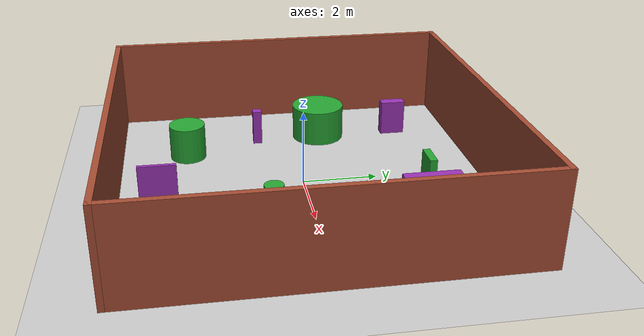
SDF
<sdf version="1.6">
 <world name="default">
  <plugin name="gazebo_ros_state" filename="libgazebo_ros_state.so">
   <ros><namespace>/gazebo</namespace></ros>
   <update_rate>1.0</update_rate>
  </plugin>
  <include><uri>model://ground_plane</uri></include>
  <include><uri>model://sun</uri></include>
  <scene><shadows>false</shadows></scene>
  <physics type="ode">
   <real_time_update_rate>1000.0</real_time_update_rate>
   <max_step_size>0.001</max_step_size>
   <real_time_factor>1</real_time_factor>
   <ode>
    <solver>
     <type>quick</type>
     <iters>150</iters>
     <precon_iters>0</precon_iters>
     <sor>1.400000</sor>
     <use_dynamic_moi_rescaling>1</use_dynamic_moi_rescaling>
    </solver>
    <constraints>
     <cfm>0.00001</cfm>
     <erp>0.2</erp>
     <contact_max_correcting_vel>2000.000000</contact_max_correcting_vel>
     <contact_surface_layer>0.01000</contact_surface_layer>
    </constraints>
   </ode>
  </physics>
  <include><uri>model://10by10</uri></include>
  <include><uri>model://obstacle1</uri></include>
  <include><uri>model://obstacle2</uri></include>
  <include><uri>model://obstacle3</uri></include>
  <include><uri>model://obstacle4</uri></include>
  <include><uri>model://obstacle5</uri></include>
  <include><uri>model://obstacle6</uri></include>
  <include><uri>model://obstacle7</uri></include>
  <include><uri>model://obstacle8</uri></include>
  <include><uri>model://obstacle9</uri></include>
 </world>
</sdf>

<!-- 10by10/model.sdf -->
<sdf version='1.6'>
  <model name='10by10'>
      <pose>0.019579 -0.010902 0 0 -0 0</pose>
      <link name='Wall_0'>
        <collision name='Wall_0_Collision'>
          <geometry>
            <box>
              <size>10 0.15 2.5</size>
            </box>
          </geometry>
          <pose>0 0 1.25 0 -0 0</pose>
          <max_contacts>10</max_contacts>
          <surface>
            <contact>
              <ode/>
            </contact>
            <bounce/>
            <friction>
              <torsional>
                <ode/>
              </torsional>
              <ode/>
            </friction>
          </surface>
        </collision>
        <visual name='Wall_0_Visual'>
          <pose>0 0 1.25 0 -0 0</pose>
          <geometry>
            <box>
              <size>10 0.15 2.5</size>
            </box>
          </geometry>
          <material>
            <script>
              <uri>file://media/materials/scripts/gazebo.material</uri>
              <name>Gazebo/Bricks</name>
            </script>
            <ambient>1 1 1 1</ambient>
          </material>
          <meta>
            <layer>0</layer>
          </meta>
        </visual>
        <pose>-4.925 -0 0 0 -0 1.5708</pose>
        <self_collide>0</self_collide>
        <enable_wind>0</enable_wind>
        <kinematic>0</kinematic>
      </link>
      <link name='Wall_1'>
        <collision name='Wall_1_Collision'>
          <geometry>
            <box>
              <size>10 0.15 2.5</size>
            </box>
          </geometry>
          <pose>0 0 1.25 0 -0 0</pose>
          <max_contacts>10</max_contacts>
          <surface>
            <contact>
              <ode/>
            </contact>
            <bounce/>
            <friction>
              <torsional>
                <ode/>
              </torsional>
              <ode/>
            </friction>
          </surface>
        </collision>
        <visual name='Wall_1_Visual'>
          <pose>0 0 1.25 0 -0 0</pose>
          <geometry>
            <box>
              <size>10 0.15 2.5</size>
            </box>
          </geometry>
          <material>
            <script>
              <uri>file://media/materials/scripts/gazebo.material</uri>
              <name>Gazebo/Bricks</name>
            </script>
            <ambient>1 1 1 1</ambient>
          </material>
          <meta>
            <layer>0</layer>
          </meta>
        </visual>
        <pose>0 4.925 0 0 -0 0</pose>
        <self_collide>0</self_collide>
        <enable_wind>0</enable_wind>
        <kinematic>0</kinematic>
      </link>
      <link name='Wall_2'>
        <collision name='Wall_2_Collision'>
          <geometry>
            <box>
              <size>10 0.15 2.5</size>
            </box>
          </geometry>
          <pose>0 0 1.25 0 -0 0</pose>
          <max_contacts>10</max_contacts>
          <surface>
            <contact>
              <ode/>
            </contact>
            <bounce/>
            <friction>
              <torsional>
                <ode/>
              </torsional>
              <ode/>
            </friction>
          </surface>
        </collision>
        <visual name='Wall_2_Visual'>
          <pose>0 0 1.25 0 -0 0</pose>
          <geometry>
            <box>
              <size>10 0.15 2.5</size>
            </box>
          </geometry>
          <material>
            <script>
              <uri>file://media/materials/scripts/gazebo.material</uri>
              <name>Gazebo/Bricks</name>
            </script>
            <ambient>1 1 1 1</ambient>
          </material>
          <meta>
            <layer>0</layer>
          </meta>
        </visual>
        <pose>4.925 -0 0 0 -0 -1.5708</pose>
        <self_collide>0</self_collide>
        <enable_wind>0</enable_wind>
        <kinematic>0</kinematic>
      </link>
      <link name='Wall_3'>
        <collision name='Wall_3_Collision'>
          <geometry>
            <box>
              <size>10 0.15 2.5</size>
            </box>
          </geometry>
          <pose>0 0 1.25 0 -0 0</pose>
          <max_contacts>10</max_contacts>
          <surface>
            <contact>
              <ode/>
            </contact>
            <bounce/>
            <friction>
              <torsional>
                <ode/>
              </torsional>
              <ode/>
            </friction>
          </surface>
        </collision>
        <visual name='Wall_3_Visual'>
          <pose>0 0 1.25 0 -0 0</pose>
          <geometry>
            <box>
              <size>10 0.15 2.5</size>
            </box>
          </geometry>
          <material>
            <script>
              <uri>file://media/materials/scripts/gazebo.material</uri>
              <name>Gazebo/Bricks</name>
            </script>
            <ambient>1 1 1 1</ambient>
          </material>
          <meta>
            <layer>0</layer>
          </meta>
        </visual>
        <pose>0 -4.925 0 0 -0 3.14159</pose>
        <self_collide>0</self_collide>
        <enable_wind>0</enable_wind>
        <kinematic>0</kinematic>
      </link>
      <static>1</static>
    </model>
</sdf>

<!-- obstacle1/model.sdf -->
<sdf version='1.6'>
  <model name='obstacle2'>
      <pose>2.86722 -3.00334 0.5 0 -0 0</pose>
      <link name='link'>
        <inertial>
          <mass>1</mass>
          <inertia>
            <ixx>0.166667</ixx>
            <ixy>0</ixy>
            <ixz>0</ixz>
            <iyy>0.166667</iyy>
            <iyz>0</iyz>
            <izz>0.166667</izz>
          </inertia>
          <pose>0 0 0 0 -0 0</pose>
        </inertial>
        <collision name='collision'>
          <geometry>
            <box>
              <size>1 1 1</size>
            </box>
          </geometry>
          <max_contacts>10</max_contacts>
          <surface>
            <contact>
              <ode/>
            </contact>
            <bounce/>
            <friction>
              <torsional>
                <ode/>
              </torsional>
              <ode/>
            </friction>
          </surface>
        </collision>
        <visual name='visual'>
          <geometry>
            <box>
              <size>1 1 1</size>
            </box>
          </geometry>
          <material>
            <script>
              <name>Gazebo/Purple</name>
              <uri>file://media/materials/scripts/gazebo.material</uri>
            </script>
          </material>
        </visual>
        <self_collide>0</self_collide>
        <enable_wind>0</enable_wind>
        <kinematic>0</kinematic>
      </link>
    </model>
</sdf>

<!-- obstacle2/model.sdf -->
<sdf version='1.6'>
  <model name='obstacle1'>
      <pose>-2.93083 3.17413 0.5 0 -0 0</pose>
      <link name='link'>
        <inertial>
          <mass>1</mass>
          <inertia>
            <ixx>0.166667</ixx>
            <ixy>0</ixy>
            <ixz>0</ixz>
            <iyy>0.166667</iyy>
            <iyz>0</iyz>
            <izz>0.166667</izz>
          </inertia>
          <pose>0 0 0 0 -0 0</pose>
        </inertial>
        <collision name='collision'>
          <geometry>
            <box>
              <size>0.3 0.7 1</size>
            </box>
          </geometry>
          <max_contacts>10</max_contacts>
          <surface>
            <contact>
              <ode/>
            </contact>
            <bounce/>
            <friction>
              <torsional>
                <ode/>
              </torsional>
              <ode/>
            </friction>
          </surface>
        </collision>
        <visual name='visual'>
          <geometry>
            <box>
              <size>0.3 0.7 1</size>
            </box>
          </geometry>
          <material>
            <script>
              <name>Gazebo/Purple</name>
              <uri>file://media/materials/scripts/gazebo.material</uri>
            </script>
          </material>
        </visual>
        <self_collide>0</self_collide>
        <enable_wind>0</enable_wind>
        <kinematic>0</kinematic>
      </link>
    </model>
</sdf>

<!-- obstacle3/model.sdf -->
<sdf version='1.6'>
  <model name='obstacle3'>
      <pose>-2.77777 -0.965179 0.5 0 -0 0</pose>
      <link name='link'>
        <inertial>
          <mass>1</mass>
          <inertia>
            <ixx>0.166667</ixx>
            <ixy>0</ixy>
            <ixz>0</ixz>
            <iyy>0.166667</iyy>
            <iyz>0</iyz>
            <izz>0.166667</izz>
          </inertia>
          <pose>0 0 0 0 -0 0</pose>
        </inertial>
        <collision name='collision'>
          <geometry>
            <box>
              <size>0.25 0.25 1</size>
            </box>
          </geometry>
          <max_contacts>10</max_contacts>
          <surface>
            <contact>
              <ode/>
            </contact>
            <bounce/>
            <friction>
              <torsional>
                <ode/>
              </torsional>
              <ode/>
            </friction>
          </surface>
        </collision>
        <visual name='visual'>
          <geometry>
            <box>
              <size>0.25 0.25 1</size>
            </box>
          </geometry>
          <material>
            <script>
              <name>Gazebo/Purple</name>
              <uri>file://media/materials/scripts/gazebo.material</uri>
            </script>
          </material>
        </visual>
        <self_collide>0</self_collide>
        <enable_wind>0</enable_wind>
        <kinematic>0</kinematic>
      </link>
    </model>
</sdf>

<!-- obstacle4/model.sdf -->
<sdf version='1.6'>
  <model name='obstacle4'>
      <pose>2.83432 2.93655 0.5 0 -0 0</pose>
      <link name='link'>
        <inertial>
          <mass>1</mass>
          <inertia>
            <ixx>0.166667</ixx>
            <ixy>0</ixy>
            <ixz>0</ixz>
            <iyy>0.166667</iyy>
            <iyz>0</iyz>
            <izz>0.166667</izz>
          </inertia>
          <pose>0 0 0 0 -0 0</pose>
        </inertial>
        <collision name='collision'>
          <geometry>
            <box>
              <size>2 1.5 1</size>
            </box>
          </geometry>
          <max_contacts>10</max_contacts>
          <surface>
            <contact>
              <ode/>
            </contact>
            <bounce/>
            <friction>
              <torsional>
                <ode/>
              </torsional>
              <ode/>
            </friction>
          </surface>
        </collision>
        <visual name='visual'>
          <geometry>
            <box>
              <size>2 1.5 1</size>
            </box>
          </geometry>
          <material>
            <script>
              <name>Gazebo/Purple</name>
              <uri>file://media/materials/scripts/gazebo.material</uri>
            </script>
          </material>
        </visual>
        <self_collide>0</self_collide>
        <enable_wind>0</enable_wind>
        <kinematic>0</kinematic>
      </link>
    </model>
</sdf>

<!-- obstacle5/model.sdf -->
<sdf version='1.6'>
  <model name='obstacle5'>
      <pose>-2.06176 -3.02362 0.5 0 -0 0</pose>
      <link name='link'>
        <inertial>
          <mass>1</mass>
          <inertia>
            <ixx>0.145833</ixx>
            <ixy>0</ixy>
            <ixz>0</ixz>
            <iyy>0.145833</iyy>
            <iyz>0</iyz>
            <izz>0.125</izz>
          </inertia>
          <pose>0 0 0 0 -0 0</pose>
        </inertial>
        <collision name='collision'>
          <geometry>
            <cylinder>
              <radius>0.5</radius>
              <length>1</length>
            </cylinder>
          </geometry>
          <max_contacts>10</max_contacts>
          <surface>
            <contact>
              <ode/>
            </contact>
            <bounce/>
            <friction>
              <torsional>
                <ode/>
              </torsional>
              <ode/>
            </friction>
          </surface>
        </collision>
        <visual name='visual'>
          <geometry>
            <cylinder>
              <radius>0.5</radius>
              <length>1</length>
            </cylinder>
          </geometry>
          <material>
            <script>
              <name>Gazebo/Green</name>
              <uri>file://media/materials/scripts/gazebo.material</uri>
            </script>
          </material>
        </visual>
        <self_collide>0</self_collide>
        <enable_wind>0</enable_wind>
        <kinematic>0</kinematic>
      </link>
    </model>
</sdf>

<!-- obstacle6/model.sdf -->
<sdf version='1.6'>
  <model name='obstacle6'>
      <pose>1.93418 -1.01849 0.5 0 -0 0</pose>
      <link name='link'>
        <inertial>
          <mass>1</mass>
          <inertia>
            <ixx>0.145833</ixx>
            <ixy>0</ixy>
            <ixz>0</ixz>
            <iyy>0.145833</iyy>
            <iyz>0</iyz>
            <izz>0.125</izz>
          </inertia>
          <pose>0 0 0 0 -0 0</pose>
        </inertial>
        <collision name='collision'>
          <geometry>
            <cylinder>
              <radius>0.25</radius>
              <length>1</length>
            </cylinder>
          </geometry>
          <max_contacts>10</max_contacts>
          <surface>
            <contact>
              <ode/>
            </contact>
            <bounce/>
            <friction>
              <torsional>
                <ode/>
              </torsional>
              <ode/>
            </friction>
          </surface>
        </collision>
        <visual name='visual'>
          <geometry>
            <cylinder>
              <radius>0.25</radius>
              <length>1</length>
            </cylinder>
          </geometry>
          <material>
            <script>
              <name>Gazebo/Green</name>
              <uri>file://media/materials/scripts/gazebo.material</uri>
            </script>
          </material>
        </visual>
        <self_collide>0</self_collide>
        <enable_wind>0</enable_wind>
        <kinematic>0</kinematic>
      </link>
    </model>
</sdf>

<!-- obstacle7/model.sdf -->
<sdf version='1.6'>
  <model name='obstacle7'>
      <pose>0.896332 3.19047 0.5 0 -0 0</pose>
      <link name='link'>
        <inertial>
          <mass>1</mass>
          <inertia>
            <ixx>0.166667</ixx>
            <ixy>0</ixy>
            <ixz>0</ixz>
            <iyy>0.166667</iyy>
            <iyz>0</iyz>
            <izz>0.166667</izz>
          </inertia>
          <pose>0 0 0 0 -0 0</pose>
        </inertial>
        <collision name='collision'>
          <geometry>
            <box>
              <size>0.7 0.2 1</size>
            </box>
          </geometry>
          <max_contacts>10</max_contacts>
          <surface>
            <contact>
              <ode/>
            </contact>
            <bounce/>
            <friction>
              <torsional>
                <ode/>
              </torsional>
              <ode/>
            </friction>
          </surface>
        </collision>
        <visual name='visual'>
          <geometry>
            <box>
              <size>0.7 0.2 1</size>
            </box>
          </geometry>
          <material>
            <script>
              <name>Gazebo/Green</name>
              <uri>file://media/materials/scripts/gazebo.material</uri>
            </script>
          </material>
        </visual>
        <self_collide>0</self_collide>
        <enable_wind>0</enable_wind>
        <kinematic>0</kinematic>
      </link>
    </model>
</sdf>

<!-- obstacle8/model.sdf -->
<sdf version='1.6'>
  <model name='obstacle8'>
      <pose>-2.96968 0.886818 0.5 0 -0 0</pose>
      <link name='link'>
        <inertial>
          <mass>1</mass>
          <inertia>
            <ixx>0.145833</ixx>
            <ixy>0</ixy>
            <ixz>0</ixz>
            <iyy>0.145833</iyy>
            <iyz>0</iyz>
            <izz>0.125</izz>
          </inertia>
          <pose>0 0 0 0 -0 0</pose>
        </inertial>
        <collision name='collision'>
          <geometry>
            <cylinder>
              <radius>0.75</radius>
              <length>1</length>
            </cylinder>
          </geometry>
          <max_contacts>10</max_contacts>
          <surface>
            <contact>
              <ode/>
            </contact>
            <bounce/>
            <friction>
              <torsional>
                <ode/>
              </torsional>
              <ode/>
            </friction>
          </surface>
        </collision>
        <visual name='visual'>
          <geometry>
            <cylinder>
              <radius>0.75</radius>
              <length>1</length>
            </cylinder>
          </geometry>
          <material>
            <script>
              <name>Gazebo/Green</name>
              <uri>file://media/materials/scripts/gazebo.material</uri>
            </script>
          </material>
        </visual>
        <self_collide>0</self_collide>
        <enable_wind>0</enable_wind>
        <kinematic>0</kinematic>
      </link>
    </model>
</sdf>

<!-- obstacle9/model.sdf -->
<sdf version='1.6'>
  <model name='obstacle9'>
      <pose>0.434793 -3.83522 0.5 0 -0 0</pose>
      <link name='link'>
        <inertial>
          <mass>1</mass>
          <inertia>
            <ixx>0.166667</ixx>
            <ixy>0</ixy>
            <ixz>0</ixz>
            <iyy>0.166667</iyy>
            <iyz>0</iyz>
            <izz>0.166667</izz>
          </inertia>
          <pose>0 0 0 0 -0 0</pose>
        </inertial>
        <collision name='collision'>
          <geometry>
            <box>
              <size>0.1 0.999999 1</size>
            </box>
          </geometry>
          <max_contacts>10</max_contacts>
          <surface>
            <contact>
              <ode/>
            </contact>
            <bounce/>
            <friction>
              <torsional>
                <ode/>
              </torsional>
              <ode/>
            </friction>
          </surface>
        </collision>
        <visual name='visual'>
          <geometry>
            <box>
              <size>0.1 0.999999 1</size>
            </box>
          </geometry>
          <material>
            <script>
              <name>Gazebo/Purple</name>
              <uri>file://media/materials/scripts/gazebo.material</uri>
            </script>
          </material>
        </visual>
        <self_collide>0</self_collide>
        <enable_wind>0</enable_wind>
        <kinematic>0</kinematic>
      </link>
    </model>
</sdf>
